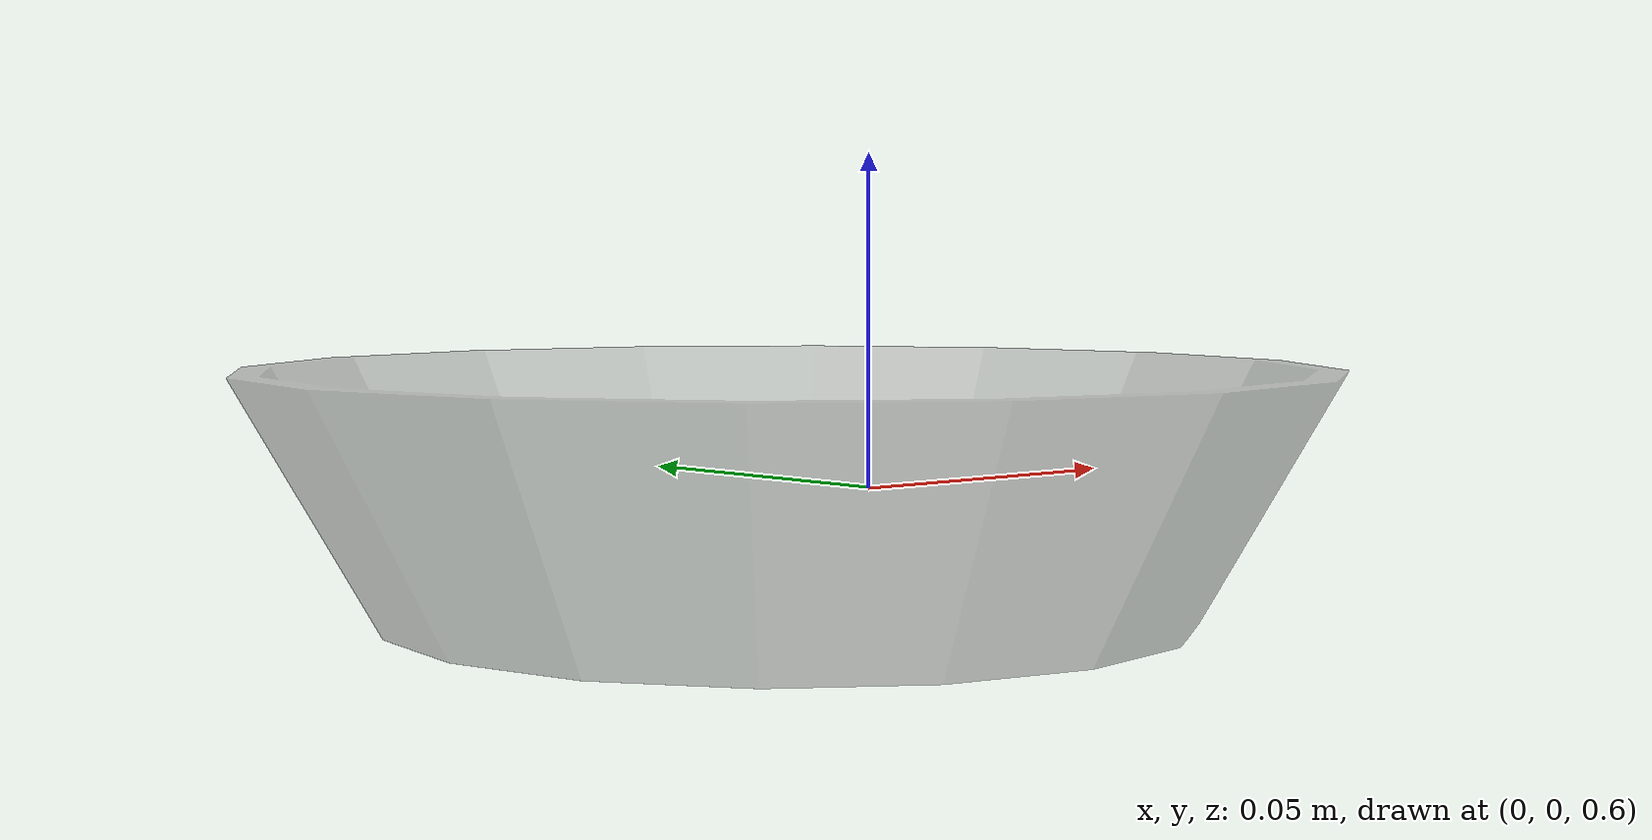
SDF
<?xml version='1.0'?>
<sdf version='1.6'>
  <model name='plastic_cup_vassoio'>
    <link name='link'>
      <pose frame=''>0 0 0.16 0 -0 0</pose>
      <inertial>
        <mass>0.1599</mass>
        <inertia>
          <ixx>0.0003029</ixx>
          <ixy>0</ixy>
          <ixz>0</ixz>
          <iyy>0.0003029</iyy>
          <iyz>0</iyz>
          <izz>3.288e-05</izz>
        </inertia>
        <pose frame=''>0 0 0 0 -0 0</pose>
      </inertial>
      <self_collide>0</self_collide>
      <enable_wind>0</enable_wind>
      <kinematic>0</kinematic>
      <gravity>1</gravity>
      <visual name='visual'>
        <geometry>
          <mesh>
            <uri>model://plastic_cup/meshes/plastic_cup.dae</uri>
            <scale>2.3 2.3 0.3</scale>
          </mesh>
        </geometry>
        <material>
          <script>
            <uri>file://media/materials/scripts/gazebo.material</uri>
            <name>Gazebo/GreyTransparent</name>
          </script>
          <shader type='vertex'>
            <normal_map>__default__</normal_map>
          </shader>
          <ambient>0.5 0.5 0.5 1</ambient>
          <diffuse>0.5 0.5 0.5 1</diffuse>
          <specular>0 0 0 1</specular>
          <emissive>0 0 0 1</emissive>
        </material>
        <pose frame=''>0 0 0.44 0 -0 0</pose>
        <transparency>0</transparency>
        <cast_shadows>1</cast_shadows>
      </visual>
      <collision name='collision'>
        <laser_retro>0</laser_retro>
        <max_contacts>10</max_contacts>
        <pose frame=''>0 0 0.44 0 -0 0</pose>
        <geometry>
          <mesh>
            <uri>/home/antonio/.gazebo/models/plastic_cup/meshes/plastic_cup.dae</uri>
            <scale>2.3 2.3 0.3</scale>
          </mesh>
        </geometry>
        <surface>
          <friction>
            <ode>
              <mu>1</mu>
              <mu2>1</mu2>
              <fdir1>0 0 0</fdir1>
              <slip1>0</slip1>
              <slip2>0</slip2>
            </ode>
            <torsional>
              <coefficient>1</coefficient>
              <patch_radius>0</patch_radius>
              <surface_radius>0.01</surface_radius>
              <use_patch_radius>0</use_patch_radius>
              <ode>
                <slip>0</slip>
              </ode>
            </torsional>
          </friction>
          <bounce>
            <restitution_coefficient>0</restitution_coefficient>
            <threshold>1e+06</threshold>
          </bounce>
          <contact>
            <collide_without_contact>0</collide_without_contact>
            <collide_without_contact_bitmask>1</collide_without_contact_bitmask>
            <collide_bitmask>1</collide_bitmask>
            <ode>
              <soft_cfm>0</soft_cfm>
              <soft_erp>0.2</soft_erp>
              <kp>100000</kp>
              <kd>100</kd>
              <max_vel>100</max_vel>
              <min_depth>0.001</min_depth>
            </ode>
            <bullet>
              <split_impulse>1</split_impulse>
              <split_impulse_penetration_threshold>-0.01</split_impulse_penetration_threshold>
              <soft_cfm>0</soft_cfm>
              <soft_erp>0.2</soft_erp>
              <kp>100000</kp>
              <kd>100</kd>
            </bullet>
          </contact>
        </surface>
      </collision>
    </link>
    <static>0</static>
    <allow_auto_disable>1</allow_auto_disable>
  </model>
</sdf>
